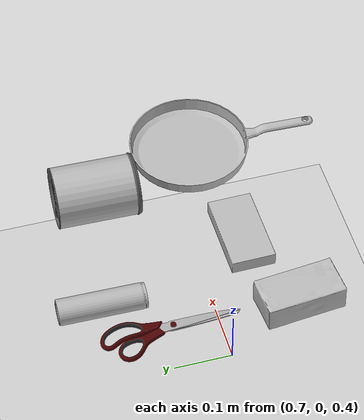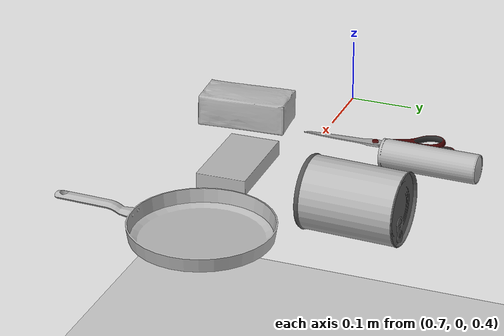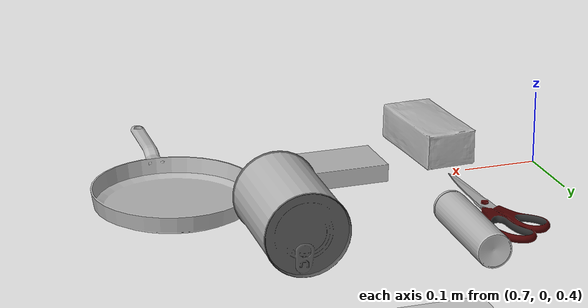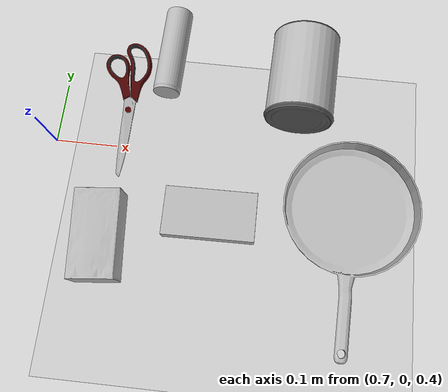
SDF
<sdf version="1.7">
 <world name="default">
  <light name="sun" type="directional">
   <pose>0 0 10 0 -0 0</pose>
   <diffuse>0.8 0.8 0.8 1</diffuse>
   <specular>0.2 0.2 0.2 1</specular>
   <attenuation>
    <range>1000</range>
    <constant>0.9</constant>
    <linear>0.01</linear>
    <quadratic>0.001</quadratic>
   </attenuation>
   <direction>-0.5 0.1 -0.9</direction>
   <spot><inner_angle>0</inner_angle><outer_angle>0</outer_angle><falloff>0</falloff></spot>
  </light>
  <model name="ground_plane">
   <static>1</static>
   <link name="link">
    <collision name="collision">
     <geometry><plane><normal>0 0 1</normal><size>100 100</size></plane></geometry>
     <surface><friction><ode><mu>100</mu><mu2>50</mu2></ode></friction></surface>
    </collision>
    <visual name="visual">
     <cast_shadows>0</cast_shadows>
     <geometry><plane><normal>0 0 1</normal><size>100 100</size></plane></geometry>
     <material>
      <script><uri>file://media/materials/scripts/gazebo.material</uri><name>Gazebo/Grey</name></script>
     </material>
    </visual>
   </link>
  </model>
  <gravity>0 0 -9.8</gravity>
  <magnetic_field>6e-06 2.3e-05 -4.2e-05</magnetic_field>
  <atmosphere type="adiabatic"/>
  <physics type="ode">
   <max_step_size>0.001</max_step_size>
   <real_time_factor>1</real_time_factor>
   <real_time_update_rate>1000</real_time_update_rate>
  </physics>
  <scene><ambient>0.4 0.4 0.4 1</ambient><background>0.7 0.7 0.7 1</background><shadows>1</shadows></scene>
  <spherical_coordinates>
   <surface_model>EARTH_WGS84</surface_model>
   <latitude_deg>0</latitude_deg>
   <longitude_deg>0</longitude_deg>
   <elevation>0</elevation>
   <heading_deg>0</heading_deg>
  </spherical_coordinates>
  <model name="oats_box">
   <link name="link">
    <inertial>
     <mass>0.001</mass>
     <inertia><ixx>1e-05</ixx><ixy>0</ixy><ixz>0</ixz><iyy>1e-05</iyy><iyz>0</iyz><izz>1e-05</izz></inertia>
    </inertial>
    <collision name="collision">
     <geometry><mesh><uri>/home/jan/ws_myrobot/src/myrobot/model/objects/oats/oats.dae</uri></mesh></geometry>
     <surface>
      <friction><ode><mu>1</mu><mu2>1</mu2></ode></friction>
      <contact><ode><kp>1e+07</kp><kd>1</kd><min_depth>0</min_depth><max_vel>0.01</max_vel></ode></contact>
     </surface>
    </collision>
    <visual name="visual">
     <geometry><mesh><uri>/home/jan/ws_myrobot/src/myrobot/model/objects/oats/oats.dae</uri></mesh></geometry>
     <material><lighting>1</lighting><shader type="pixel"/></material>
    </visual>
   </link>
   <static>0</static>
   <pose>0.794616 -0.149185 0.399797 -2.60373 1.54518 -0.941416</pose>
  </model>
  <model name="tea_box">
   <link name="link">
    <inertial>
     <mass>0.001</mass>
     <inertia><ixx>1e-05</ixx><ixy>0</ixy><ixz>0</ixz><iyy>1e-05</iyy><iyz>0</iyz><izz>1e-05</izz></inertia>
    </inertial>
    <collision name="collision">
     <geometry><mesh><uri>/home/jan/ws_myrobot/src/myrobot/model/objects/tea/tea.dae</uri></mesh></geometry>
     <surface>
      <friction><ode><mu>1</mu><mu2>1</mu2></ode></friction>
      <contact><ode><kp>1e+07</kp><kd>1</kd><min_depth>0</min_depth><max_vel>0.01</max_vel></ode></contact>
     </surface>
    </collision>
    <visual name="visual">
     <geometry><mesh><uri>/home/jan/ws_myrobot/src/myrobot/model/objects/tea/tea.dae</uri></mesh></geometry>
     <material><lighting>1</lighting><shader type="pixel"/></material>
    </visual>
   </link>
   <static>0</static>
   <pose>0.965589 -0.095605 0.385745 1.57061 -0.000267 1.58451</pose>
  </model>
  <model name="crisps_can">
   <link name="link">
    <inertial>
     <mass>0.001</mass>
     <inertia><ixx>1e-05</ixx><ixy>0</ixy><ixz>0</ixz><iyy>1e-05</iyy><iyz>0</iyz><izz>1e-05</izz></inertia>
    </inertial>
    <collision name="collision">
     <geometry><mesh><uri>/home/jan/ws_myrobot/src/myrobot/model/objects/crisps/crisps.dae</uri></mesh></geometry>
     <surface>
      <friction><ode><mu>1</mu><mu2>1</mu2></ode></friction>
      <contact><ode><kp>1e+07</kp><kd>1</kd><min_depth>0</min_depth><max_vel>0.01</max_vel></ode></contact>
     </surface>
    </collision>
    <visual name="visual">
     <geometry><mesh><uri>/home/jan/ws_myrobot/src/myrobot/model/objects/crisps/crisps.dae</uri></mesh></geometry>
     <material><lighting>1</lighting><shader type="pixel"/></material>
    </visual>
   </link>
   <static>0</static>
   <pose>0.867806 0.180853 0.39624 -1e-06 -0.09817 -0.018203</pose>
  </model>
  <model name="soup_can">
   <link name="link">
    <inertial>
     <mass>0.001</mass>
     <inertia><ixx>1e-05</ixx><ixy>0</ixy><ixz>0</ixz><iyy>1e-05</iyy><iyz>0</iyz><izz>1e-05</izz></inertia>
    </inertial>
    <collision name="collision">
     <geometry><mesh><uri>/home/jan/ws_myrobot/src/myrobot/model/objects/soup/soup.dae</uri></mesh></geometry>
     <surface>
      <friction><ode><mu>1</mu><mu2>1</mu2></ode></friction>
      <contact><ode><kp>1e+07</kp><kd>1</kd><min_depth>0</min_depth><max_vel>0.01</max_vel></ode></contact>
     </surface>
    </collision>
    <visual name="visual">
     <geometry><mesh><uri>/home/jan/ws_myrobot/src/myrobot/model/objects/soup/soup.dae</uri></mesh></geometry>
     <material><lighting>1</lighting><shader type="pixel"/></material>
    </visual>
   </link>
   <static>0</static>
   <pose>1.09445 0.13761 0.429213 3.13386 -0.098175 -0.028277</pose>
  </model>
  <model name="Scissors">
   <link name="link">
    <inertial>
     <mass>0.001</mass>
     <inertia><ixx>1e-05</ixx><ixy>0</ixy><ixz>0</ixz><iyy>1e-05</iyy><iyz>0</iyz><izz>1e-05</izz></inertia>
    </inertial>
    <collision name="collision">
     <geometry>
      <mesh><uri>/home/jan/ws_myrobot/src/myrobot/model/objects/scissors/scissors.dae</uri></mesh>
     </geometry>
     <surface>
      <friction><ode><mu>1</mu><mu2>1</mu2></ode></friction>
      <contact><ode><kp>1e+07</kp><kd>1</kd><min_depth>0</min_depth><max_vel>0.01</max_vel></ode></contact>
     </surface>
    </collision>
    <visual name="visual">
     <geometry>
      <mesh><uri>/home/jan/ws_myrobot/src/myrobot/model/objects/scissors/scissors.dae</uri></mesh>
     </geometry>
     <material><lighting>1</lighting><shader type="pixel"/></material>
    </visual>
   </link>
   <static>0</static>
   <pose>0.796968 0.114364 0.378227 0.000195 -0.000237 -0.003223</pose>
  </model>
  <model name="Frying_pan">
   <link name="link">
    <inertial>
     <mass>0.001</mass>
     <inertia><ixx>1e-05</ixx><ixy>0</ixy><ixz>0</ixz><iyy>1e-05</iyy><iyz>0</iyz><izz>1e-05</izz></inertia>
    </inertial>
    <collision name="collision">
     <geometry><mesh><uri>/home/jan/ws_myrobot/src/myrobot/model/objects/pan/pan.dae</uri></mesh></geometry>
     <surface>
      <friction><ode><mu>1</mu><mu2>1</mu2></ode></friction>
      <contact><ode><kp>1e+07</kp><kd>1</kd><min_depth>0</min_depth><max_vel>0.01</max_vel></ode></contact>
     </surface>
    </collision>
    <visual name="visual">
     <geometry><mesh><uri>/home/jan/ws_myrobot/src/myrobot/model/objects/pan/pan.dae</uri></mesh></geometry>
     <material><lighting>1</lighting><shader type="pixel"/></material>
    </visual>
   </link>
   <static>0</static>
   <pose>1.19189 -0.065254 0.374805 -1.5708 -3e-06 -0.031314</pose>
  </model>
 </world>
</sdf>
